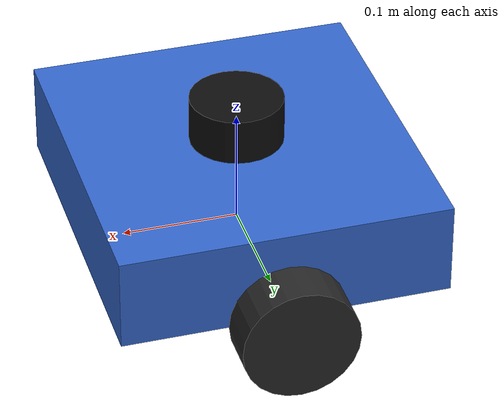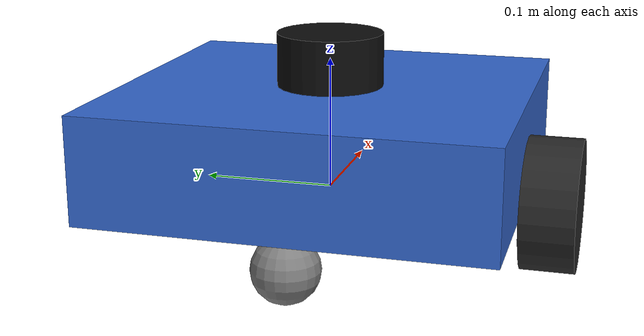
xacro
<?xml version="1.0"?>
<robot name="diff_robot" xmlns:xacro="http://www.ros.org/wiki/xacro">

  <!--
    Differential-Drive Robot with 2D LiDAR
    NMPC Goal-Directed Navigation Project
    ME 5659 | Pradeep Sivaa Aiyanar
    Gazebo Harmonic (gz-sim 8.x) compatible
  -->

  <!-- ── Properties ── -->
  <xacro:property name="wheel_radius"  value="0.05"/>
  <xacro:property name="wheel_width"   value="0.04"/>
  <xacro:property name="wheel_sep"     value="0.34"/>
  <xacro:property name="chassis_l"     value="0.28"/>
  <xacro:property name="chassis_w"     value="0.30"/>
  <xacro:property name="chassis_h"     value="0.08"/>
  <xacro:property name="chassis_mass"  value="2.0"/>
  <xacro:property name="wheel_mass"    value="0.1"/>
  <xacro:property name="caster_radius" value="0.025"/>
  <xacro:property name="caster_mass"   value="0.05"/>
  <xacro:property name="lidar_r"       value="0.04"/>
  <xacro:property name="lidar_h"       value="0.04"/>
  <xacro:property name="lidar_mass"    value="0.1"/>

  <!-- ── Inertia macros ── -->
  <xacro:macro name="box_inertia" params="m l w h">
    <inertial>
      <mass value="${m}"/>
      <inertia ixx="${(1/12)*m*(h*h+w*w)}" ixy="0" ixz="0"
               iyy="${(1/12)*m*(l*l+h*h)}" iyz="0"
               izz="${(1/12)*m*(l*l+w*w)}"/>
    </inertial>
  </xacro:macro>

  <xacro:macro name="cylinder_inertia" params="m r h">
    <inertial>
      <mass value="${m}"/>
      <inertia ixx="${(1/12)*m*(3*r*r+h*h)}" ixy="0" ixz="0"
               iyy="${(1/12)*m*(3*r*r+h*h)}" iyz="0"
               izz="${0.5*m*r*r}"/>
    </inertial>
  </xacro:macro>

  <xacro:macro name="sphere_inertia" params="m r">
    <inertial>
      <mass value="${m}"/>
      <inertia ixx="${(2/5)*m*r*r}" ixy="0" ixz="0"
               iyy="${(2/5)*m*r*r}" iyz="0"
               izz="${(2/5)*m*r*r}"/>
    </inertial>
  </xacro:macro>

  <!-- ── Base link (chassis at wheel-axle height) ── -->
  <link name="base_link">
    <visual>
      <origin xyz="0 0 ${chassis_h/2}" rpy="0 0 0"/>
      <geometry><box size="${chassis_l} ${chassis_w} ${chassis_h}"/></geometry>
      <material name="blue"><color rgba="0.2 0.4 0.8 1.0"/></material>
    </visual>
    <collision>
      <origin xyz="0 0 ${chassis_h/2}" rpy="0 0 0"/>
      <geometry><box size="${chassis_l} ${chassis_w} ${chassis_h}"/></geometry>
    </collision>
    <xacro:box_inertia m="${chassis_mass}" l="${chassis_l}" w="${chassis_w}" h="${chassis_h}"/>
  </link>

  <!-- ── Wheel macro ── -->
  <xacro:macro name="wheel" params="name y_sign">
    <link name="${name}">
      <visual>
        <origin xyz="0 0 0" rpy="${pi/2} 0 0"/>
        <geometry><cylinder radius="${wheel_radius}" length="${wheel_width}"/></geometry>
        <material name="dark_grey"><color rgba="0.15 0.15 0.15 1.0"/></material>
      </visual>
      <collision>
        <origin xyz="0 0 0" rpy="${pi/2} 0 0"/>
        <geometry><cylinder radius="${wheel_radius}" length="${wheel_width}"/></geometry>
      </collision>
      <xacro:cylinder_inertia m="${wheel_mass}" r="${wheel_radius}" h="${wheel_width}"/>
    </link>
    <joint name="${name}_joint" type="continuous">
      <parent link="base_link"/>
      <child link="${name}"/>
      <origin xyz="0 ${y_sign * wheel_sep/2} 0" rpy="0 0 0"/>
      <axis xyz="0 1 0"/>
    </joint>
    <gazebo reference="${name}">
      <mu1>1.0</mu1><mu2>0.5</mu2>
      <kp>500000.0</kp><kd>10.0</kd>
      <minDepth>0.001</minDepth><maxVel>0.1</maxVel>
    </gazebo>
  </xacro:macro>

  <xacro:wheel name="left_wheel"  y_sign="1"/>
  <xacro:wheel name="right_wheel" y_sign="-1"/>

  <!-- ── Caster wheel ── -->
  <link name="caster_wheel">
    <visual>
      <origin xyz="0 0 0" rpy="0 0 0"/>
      <geometry><sphere radius="${caster_radius}"/></geometry>
      <material name="grey"><color rgba="0.5 0.5 0.5 1.0"/></material>
    </visual>
    <collision>
      <origin xyz="0 0 0" rpy="0 0 0"/>
      <geometry><sphere radius="${caster_radius}"/></geometry>
    </collision>
    <xacro:sphere_inertia m="${caster_mass}" r="${caster_radius}"/>
  </link>
  <joint name="caster_joint" type="fixed">
    <parent link="base_link"/>
    <child link="caster_wheel"/>
    <origin xyz="${-chassis_l/2+caster_radius} 0 ${-(wheel_radius-caster_radius)}" rpy="0 0 0"/>
  </joint>
  <gazebo reference="caster_wheel">
    <mu1>0.0</mu1><mu2>0.0</mu2>
  </gazebo>

  <!-- ── LiDAR link (mounted on top of chassis, centred) ── -->
  <link name="lidar_link">
    <visual>
      <origin xyz="0 0 0" rpy="0 0 0"/>
      <geometry><cylinder radius="${lidar_r}" length="${lidar_h}"/></geometry>
      <material name="black"><color rgba="0.05 0.05 0.05 1.0"/></material>
    </visual>
    <collision>
      <origin xyz="0 0 0" rpy="0 0 0"/>
      <geometry><cylinder radius="${lidar_r}" length="${lidar_h}"/></geometry>
    </collision>
    <xacro:cylinder_inertia m="${lidar_mass}" r="${lidar_r}" h="${lidar_h}"/>
  </link>

  <joint name="lidar_joint" type="fixed">
    <parent link="base_link"/>
    <child link="lidar_link"/>
    <!-- Centre on chassis top: z = chassis_h + lidar_h/2 -->
    <origin xyz="0.0 0.0 ${chassis_h + lidar_h/2}" rpy="0 0 0"/>
  </joint>

  <!-- ════════════════════════════════════════════════════════════════
       Gazebo Harmonic Plugins
       ════════════════════════════════════════════════════════════════ -->
  <gazebo>
    <!-- Differential drive -->
    <plugin filename="gz-sim-diff-drive-system"
            name="gz::sim::systems::DiffDrive">
      <left_joint>left_wheel_joint</left_joint>
      <right_joint>right_wheel_joint</right_joint>
      <wheel_separation>${wheel_sep}</wheel_separation>
      <wheel_radius>${wheel_radius}</wheel_radius>
      <odom_publish_frequency>50</odom_publish_frequency>
      <topic>/cmd_vel</topic>
      <odom_topic>/odom</odom_topic>
      <tf_topic>/tf</tf_topic>
      <frame_id>odom</frame_id>
      <child_frame_id>base_link</child_frame_id>
      <min_velocity>-1.5</min_velocity>
      <max_velocity>1.5</max_velocity>
      <min_acceleration>-3.0</min_acceleration>
      <max_acceleration>3.0</max_acceleration>
    </plugin>

    <!-- Joint state publisher -->
    <plugin filename="gz-sim-joint-state-publisher-system"
            name="gz::sim::systems::JointStatePublisher">
      <topic>/joint_states</topic>
    </plugin>
  </gazebo>

  <!-- 2D LiDAR sensor — 360° scan, 10 Hz, range 0.1–12 m -->
  <gazebo reference="lidar_link">
    <sensor name="lidar" type="gpu_lidar">
      <topic>/scan</topic>
      <update_rate>10</update_rate>
      <lidar>
        <scan>
          <horizontal>
            <samples>360</samples>
            <resolution>1</resolution>
            <min_angle>-3.14159265</min_angle>
            <max_angle>3.14159265</max_angle>
          </horizontal>
        </scan>
        <range>
          <min>0.15</min>
          <max>12.0</max>
          <resolution>0.01</resolution>
        </range>
        <noise>
          <type>gaussian</type>
          <mean>0.0</mean>
          <stddev>0.01</stddev>
        </noise>
      </lidar>
      <always_on>true</always_on>
      <visualize>true</visualize>
      <frame_id>lidar_link</frame_id>
    </sensor>
  </gazebo>

</robot>
